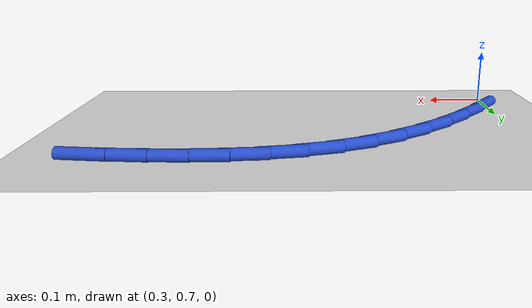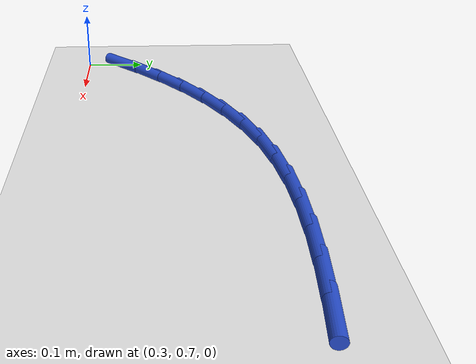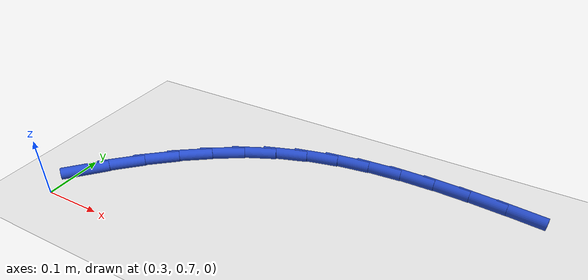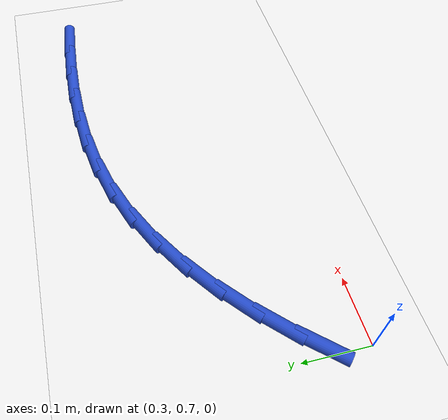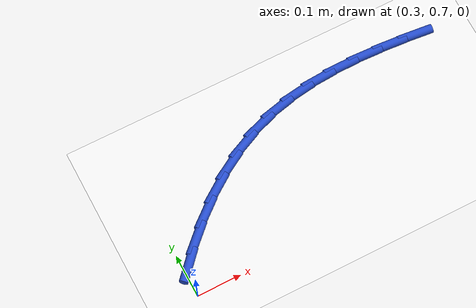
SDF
<sdf version="1.6">
 <world name="default">
  <model name="ground_plane">
   <static>1</static>
   <link name="link">
    <collision name="collision">
     <geometry><plane><normal>0 0 1</normal><size>100 100</size></plane></geometry>
     <surface><friction><ode><mu>100</mu><mu2>50</mu2></ode></friction></surface>
    </collision>
    <visual name="visual">
     <cast_shadows>0</cast_shadows>
     <geometry><plane><normal>0 0 1</normal><size>100 100</size></plane></geometry>
     <material>
      <script><uri>file://media/materials/scripts/gazebo.material</uri><name>Gazebo/WhiteGlow</name></script>
     </material>
    </visual>
   </link>
  </model>
  <model name="line">
   <link name="link_14">
    <pose>0.3132182321071286 0.7667278094103158 0.01 0 1.57 0.8370256965536679</pose>
    <collision name="collision">
     <geometry><cylinder><radius>0.01</radius><length>0.08</length></cylinder></geometry>
    </collision>
    <visual name="visual">
     <material>
      <script><name>Gazebo/Blue</name><uri>file://media/materials/scripts/gazebo.material</uri></script>
     </material>
     <geometry><cylinder><radius>0.01</radius><length>0.08</length></cylinder></geometry>
    </visual>
   </link>
   <link name="link_15">
    <pose>0.354066128392073 0.8120272351617575 0.01 0 1.57 0.7748062430307114</pose>
    <collision name="collision">
     <geometry><cylinder><radius>0.01</radius><length>0.08</length></cylinder></geometry>
    </collision>
    <visual name="visual">
     <material>
      <script><name>Gazebo/Blue</name><uri>file://media/materials/scripts/gazebo.material</uri></script>
     </material>
     <geometry><cylinder><radius>0.01</radius><length>0.08</length></cylinder></geometry>
    </visual>
   </link>
   <link name="link_16">
    <pose>0.397010898118506 0.8540717712632155 0.01 0 1.57 0.704832832484371</pose>
    <collision name="collision">
     <geometry><cylinder><radius>0.01</radius><length>0.08</length></cylinder></geometry>
    </collision>
    <visual name="visual">
     <material>
      <script><name>Gazebo/Blue</name><uri>file://media/materials/scripts/gazebo.material</uri></script>
     </material>
     <geometry><cylinder><radius>0.01</radius><length>0.08</length></cylinder></geometry>
    </visual>
   </link>
   <link name="link_17">
    <pose>0.44201745866629655 0.8923536178960513 0.01 0 1.57 0.6260840241363628</pose>
    <collision name="collision">
     <geometry><cylinder><radius>0.01</radius><length>0.08</length></cylinder></geometry>
    </collision>
    <visual name="visual">
     <material>
      <script><name>Gazebo/Blue</name><uri>file://media/materials/scripts/gazebo.material</uri></script>
     </material>
     <geometry><cylinder><radius>0.01</radius><length>0.08</length></cylinder></geometry>
    </visual>
   </link>
   <link name="link_18">
    <pose>0.4890507274153133 0.926364975241625 0.01 0 1.57 0.5376873042346014</pose>
    <collision name="collision">
     <geometry><cylinder><radius>0.01</radius><length>0.08</length></cylinder></geometry>
    </collision>
    <visual name="visual">
     <material>
      <script><name>Gazebo/Blue</name><uri>file://media/materials/scripts/gazebo.material</uri></script>
     </material>
     <geometry><cylinder><radius>0.01</radius><length>0.08</length></cylinder></geometry>
    </visual>
   </link>
   <link name="link_19">
    <pose>0.538075621745425 0.9555980434812974 0.01 0 1.57 0.4391311795184668</pose>
    <collision name="collision">
     <geometry><cylinder><radius>0.01</radius><length>0.08</length></cylinder></geometry>
    </collision>
    <visual name="visual">
     <material>
      <script><name>Gazebo/Blue</name><uri>file://media/materials/scripts/gazebo.material</uri></script>
     </material>
     <geometry><cylinder><radius>0.01</radius><length>0.08</length></cylinder></geometry>
    </visual>
   </link>
   <link name="link_20">
    <pose>0.5890570590365006 0.9795450227964293 0.01 0 1.57 0.33189665658468115</pose>
    <collision name="collision">
     <geometry><cylinder><radius>0.01</radius><length>0.08</length></cylinder></geometry>
    </collision>
    <visual name="visual">
     <material>
      <script><name>Gazebo/Blue</name><uri>file://media/materials/scripts/gazebo.material</uri></script>
     </material>
     <geometry><cylinder><radius>0.01</radius><length>0.08</length></cylinder></geometry>
    </visual>
   </link>
   <link name="link_21">
    <pose>0.6419498477174804 0.9977742804976563 0.01 0 1.57 0.22968830137411733</pose>
    <collision name="collision">
     <geometry><cylinder><radius>0.01</radius><length>0.08</length></cylinder></geometry>
    </collision>
    <visual name="visual">
     <material>
      <script><name>Gazebo/Blue</name><uri>file://media/materials/scripts/gazebo.material</uri></script>
     </material>
     <geometry><cylinder><radius>0.01</radius><length>0.08</length></cylinder></geometry>
    </visual>
   </link>
   <link name="link_22">
    <pose>0.6966156580223954 1.0105559450360382 0.01 0 1.57 0.14097224470200106</pose>
    <collision name="collision">
     <geometry><cylinder><radius>0.01</radius><length>0.08</length></cylinder></geometry>
    </collision>
    <visual name="visual">
     <material>
      <script><name>Gazebo/Blue</name><uri>file://media/materials/scripts/gazebo.material</uri></script>
     </material>
     <geometry><cylinder><radius>0.01</radius><length>0.08</length></cylinder></geometry>
    </visual>
   </link>
   <link name="link_23">
    <pose>0.7528659283889344 1.0185386224863564 0.01 0 1.57 0.06644603403786285</pose>
    <collision name="collision">
     <geometry><cylinder><radius>0.01</radius><length>0.08</length></cylinder></geometry>
    </collision>
    <visual name="visual">
     <material>
      <script><name>Gazebo/Blue</name><uri>file://media/materials/scripts/gazebo.material</uri></script>
     </material>
     <geometry><cylinder><radius>0.01</radius><length>0.08</length></cylinder></geometry>
    </visual>
   </link>
   <link name="link_24">
    <pose>0.8105116091792887 1.0223745963880229 0.01 0 1.57 0.005803537968065013</pose>
    <collision name="collision">
     <geometry><cylinder><radius>0.01</radius><length>0.08</length></cylinder></geometry>
    </collision>
    <visual name="visual">
     <material>
      <script><name>Gazebo/Blue</name><uri>file://media/materials/scripts/gazebo.material</uri></script>
     </material>
     <geometry><cylinder><radius>0.01</radius><length>0.08</length></cylinder></geometry>
    </visual>
   </link>
   <link name="link_25">
    <pose>0.8693636507556493 1.0227161502804496 0.01 0 1.57 -0.04174306030227667</pose>
    <collision name="collision">
     <geometry><cylinder><radius>0.01</radius><length>0.08</length></cylinder></geometry>
    </collision>
    <visual name="visual">
     <material>
      <script><name>Gazebo/Blue</name><uri>file://media/materials/scripts/gazebo.material</uri></script>
     </material>
     <geometry><cylinder><radius>0.01</radius><length>0.08</length></cylinder></geometry>
    </visual>
   </link>
   <link name="link_26">
    <pose>0.9292330034802078 1.020215567703049 0.01 0 1.57 -0.07712218299303908</pose>
    <collision name="collision">
     <geometry><cylinder><radius>0.01</radius><length>0.08</length></cylinder></geometry>
    </collision>
    <visual name="visual">
     <material>
      <script><name>Gazebo/Blue</name><uri>file://media/materials/scripts/gazebo.material</uri></script>
     </material>
     <geometry><cylinder><radius>0.01</radius><length>0.08</length></cylinder></geometry>
    </visual>
   </link>
   <link name="link_27">
    <pose>0.9899306177151556 1.0155251321952334 0.01 0 1.57 -0.10119096985141177</pose>
    <collision name="collision">
     <geometry><cylinder><radius>0.01</radius><length>0.08</length></cylinder></geometry>
    </collision>
    <visual name="visual">
     <material>
      <script><name>Gazebo/Blue</name><uri>file://media/materials/scripts/gazebo.material</uri></script>
     </material>
     <geometry><cylinder><radius>0.01</radius><length>0.08</length></cylinder></geometry>
    </visual>
   </link>
  </model>
 </world>
</sdf>
